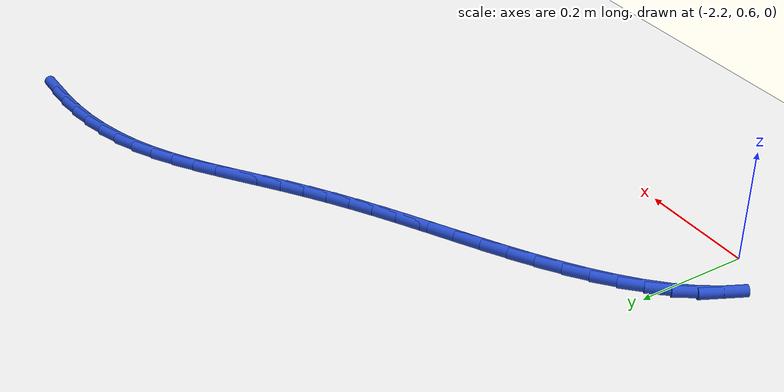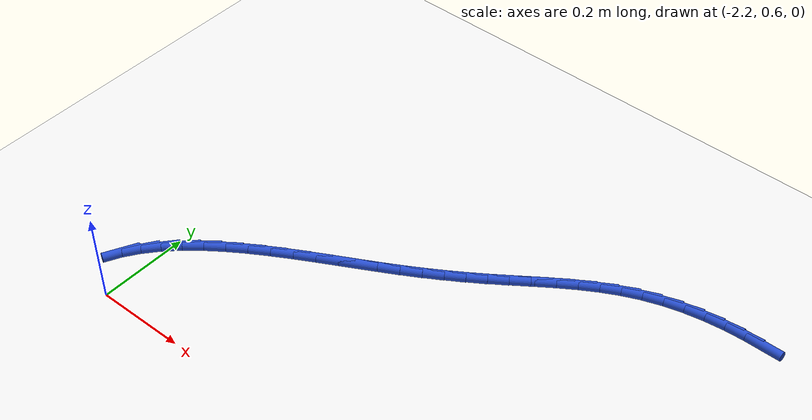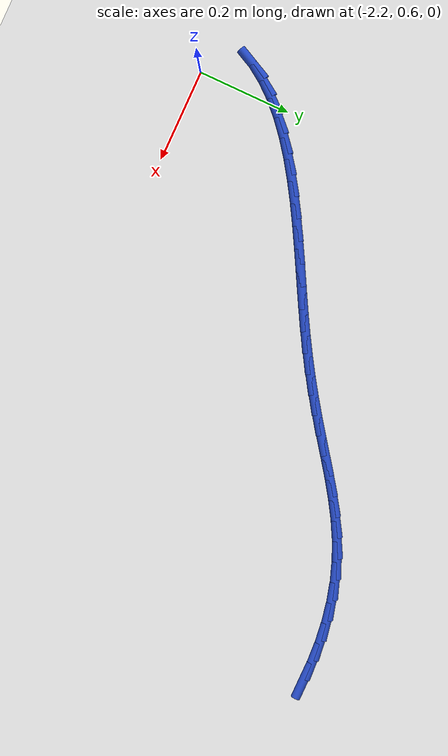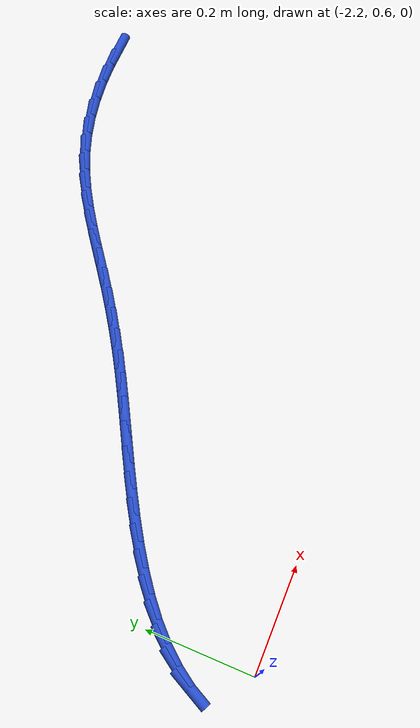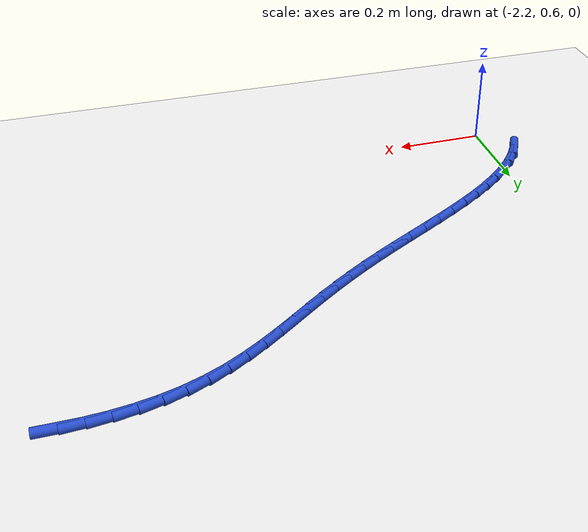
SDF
<sdf version="1.6">
 <world name="default">
  <model name="ground_plane">
   <static>1</static>
   <link name="link">
    <collision name="collision">
     <geometry><plane><normal>0 0 1</normal><size>100 100</size></plane></geometry>
     <surface><friction><ode><mu>100</mu><mu2>50</mu2></ode></friction></surface>
    </collision>
    <visual name="visual">
     <cast_shadows>0</cast_shadows>
     <geometry><plane><normal>0 0 1</normal><size>100 100</size></plane></geometry>
     <material>
      <script><uri>file://media/materials/scripts/gazebo.material</uri><name>Gazebo/WhiteGlow</name></script>
     </material>
    </visual>
   </link>
  </model>
  <model name="line">
   <link name="link_43">
    <pose>-1.1350064405579257 1.32403395420901 0.01 0 1.57 -0.003826057197478869</pose>
    <collision name="collision">
     <geometry><cylinder><radius>0.01</radius><length>0.08</length></cylinder></geometry>
    </collision>
    <visual name="visual">
     <material>
      <script><name>Gazebo/Blue</name><uri>file://media/materials/scripts/gazebo.material</uri></script>
     </material>
     <geometry><cylinder><radius>0.01</radius><length>0.08</length></cylinder></geometry>
    </visual>
   </link>
   <link name="link_44">
    <pose>-1.1793335190831997 1.324203552974415 0.01 0 1.57 0.05669230682256397</pose>
    <collision name="collision">
     <geometry><cylinder><radius>0.01</radius><length>0.08</length></cylinder></geometry>
    </collision>
    <visual name="visual">
     <material>
      <script><name>Gazebo/Blue</name><uri>file://media/materials/scripts/gazebo.material</uri></script>
     </material>
     <geometry><cylinder><radius>0.01</radius><length>0.08</length></cylinder></geometry>
    </visual>
   </link>
   <link name="link_45">
    <pose>-1.2233157640510541 1.32170742327314 0.01 0 1.57 0.12095782961880742</pose>
    <collision name="collision">
     <geometry><cylinder><radius>0.01</radius><length>0.08</length></cylinder></geometry>
    </collision>
    <visual name="visual">
     <material>
      <script><name>Gazebo/Blue</name><uri>file://media/materials/scripts/gazebo.material</uri></script>
     </material>
     <geometry><cylinder><radius>0.01</radius><length>0.08</length></cylinder></geometry>
    </visual>
   </link>
   <link name="link_46">
    <pose>-1.2667519926686353 1.3164276973171631 0.01 0 1.57 0.18935030209173057</pose>
    <collision name="collision">
     <geometry><cylinder><radius>0.01</radius><length>0.08</length></cylinder></geometry>
    </collision>
    <visual name="visual">
     <material>
      <script><name>Gazebo/Blue</name><uri>file://media/materials/scripts/gazebo.material</uri></script>
     </material>
     <geometry><cylinder><radius>0.01</radius><length>0.08</length></cylinder></geometry>
    </visual>
   </link>
   <link name="link_47">
    <pose>-1.309441022143088 1.308246507318462 0.01 0 1.57 0.2621603259520876</pose>
    <collision name="collision">
     <geometry><cylinder><radius>0.01</radius><length>0.08</length></cylinder></geometry>
    </collision>
    <visual name="visual">
     <material>
      <script><name>Gazebo/Blue</name><uri>file://media/materials/scripts/gazebo.material</uri></script>
     </material>
     <geometry><cylinder><radius>0.01</radius><length>0.08</length></cylinder></geometry>
    </visual>
   </link>
   <link name="link_48">
    <pose>-1.351181669681559 1.2970459854890126 0.01 0 1.57 0.3395435796622505</pose>
    <collision name="collision">
     <geometry><cylinder><radius>0.01</radius><length>0.08</length></cylinder></geometry>
    </collision>
    <visual name="visual">
     <material>
      <script><name>Gazebo/Blue</name><uri>file://media/materials/scripts/gazebo.material</uri></script>
     </material>
     <geometry><cylinder><radius>0.01</radius><length>0.08</length></cylinder></geometry>
    </visual>
   </link>
   <link name="link_49">
    <pose>-1.3917727524911951 1.2827082640407936 0.01 0 1.57 0.42093712263266997</pose>
    <collision name="collision">
     <geometry><cylinder><radius>0.01</radius><length>0.08</length></cylinder></geometry>
    </collision>
    <visual name="visual">
     <material>
      <script><name>Gazebo/Blue</name><uri>file://media/materials/scripts/gazebo.material</uri></script>
     </material>
     <geometry><cylinder><radius>0.01</radius><length>0.08</length></cylinder></geometry>
    </visual>
   </link>
   <link name="link_50">
    <pose>-1.431024405599243 1.2651354156227603 0.01 0 1.57 0.49559298672273483</pose>
    <collision name="collision">
     <geometry><cylinder><radius>0.01</radius><length>0.08</length></cylinder></geometry>
    </collision>
    <visual name="visual">
     <material>
      <script><name>Gazebo/Blue</name><uri>file://media/materials/scripts/gazebo.material</uri></script>
     </material>
     <geometry><cylinder><radius>0.01</radius><length>0.08</length></cylinder></geometry>
    </visual>
   </link>
   <link name="link_51">
    <pose>-1.4689697541416944 1.2446223906792553 0.01 0 1.57 0.5537315926731041</pose>
    <collision name="collision">
     <geometry><cylinder><radius>0.01</radius><length>0.08</length></cylinder></geometry>
    </collision>
    <visual name="visual">
     <material>
      <script><name>Gazebo/Blue</name><uri>file://media/materials/scripts/gazebo.material</uri></script>
     </material>
     <geometry><cylinder><radius>0.01</radius><length>0.08</length></cylinder></geometry>
    </visual>
   </link>
   <link name="link_52">
    <pose>-1.5058459617517588 1.2218236273261294 0.01 0 1.57 0.5953084457364575</pose>
    <collision name="collision">
     <geometry><cylinder><radius>0.01</radius><length>0.08</length></cylinder></geometry>
    </collision>
    <visual name="visual">
     <material>
      <script><name>Gazebo/Blue</name><uri>file://media/materials/scripts/gazebo.material</uri></script>
     </material>
     <geometry><cylinder><radius>0.01</radius><length>0.08</length></cylinder></geometry>
    </visual>
   </link>
   <link name="link_53">
    <pose>-1.5418977101846243 1.1974068095725383 0.01 0 1.57 0.6208105087612137</pose>
    <collision name="collision">
     <geometry><cylinder><radius>0.01</radius><length>0.08</length></cylinder></geometry>
    </collision>
    <visual name="visual">
     <material>
      <script><name>Gazebo/Blue</name><uri>file://media/materials/scripts/gazebo.material</uri></script>
     </material>
     <geometry><cylinder><radius>0.01</radius><length>0.08</length></cylinder></geometry>
    </visual>
   </link>
   <link name="link_54">
    <pose>-1.5773696811954772 1.1720396214276338 0.01 0 1.57 0.6305769314997918</pose>
    <collision name="collision">
     <geometry><cylinder><radius>0.01</radius><length>0.08</length></cylinder></geometry>
    </collision>
    <visual name="visual">
     <material>
      <script><name>Gazebo/Blue</name><uri>file://media/materials/scripts/gazebo.material</uri></script>
     </material>
     <geometry><cylinder><radius>0.01</radius><length>0.08</length></cylinder></geometry>
    </visual>
   </link>
   <link name="link_55">
    <pose>-1.612506556539506 1.1463897469005704 0.01 0 1.57 0.624615673662241</pose>
    <collision name="collision">
     <geometry><cylinder><radius>0.01</radius><length>0.08</length></cylinder></geometry>
    </collision>
    <visual name="visual">
     <material>
      <script><name>Gazebo/Blue</name><uri>file://media/materials/scripts/gazebo.material</uri></script>
     </material>
     <geometry><cylinder><radius>0.01</radius><length>0.08</length></cylinder></geometry>
    </visual>
   </link>
   <link name="link_56">
    <pose>-1.6475530349599123 1.1211247329157865 0.01 0 1.57 0.6058468612660123</pose>
    <collision name="collision">
     <geometry><cylinder><radius>0.01</radius><length>0.08</length></cylinder></geometry>
    </collision>
    <visual name="visual">
     <material>
      <script><name>Gazebo/Blue</name><uri>file://media/materials/scripts/gazebo.material</uri></script>
     </material>
     <geometry><cylinder><radius>0.01</radius><length>0.08</length></cylinder></geometry>
    </visual>
   </link>
   <link name="link_57">
    <pose>-1.6827772542499968 1.096722985087023 0.01 0 1.57 0.5840741859471246</pose>
    <collision name="collision">
     <geometry><cylinder><radius>0.01</radius><length>0.08</length></cylinder></geometry>
    </collision>
    <visual name="visual">
     <material>
      <script><name>Gazebo/Blue</name><uri>file://media/materials/scripts/gazebo.material</uri></script>
     </material>
     <geometry><cylinder><radius>0.01</radius><length>0.08</length></cylinder></geometry>
    </visual>
   </link>
   <link name="link_58">
    <pose>-1.7185172870066328 1.0730985704410467 0.01 0 1.57 0.5617065692769106</pose>
    <collision name="collision">
     <geometry><cylinder><radius>0.01</radius><length>0.08</length></cylinder></geometry>
    </collision>
    <visual name="visual">
     <material>
      <script><name>Gazebo/Blue</name><uri>file://media/materials/scripts/gazebo.material</uri></script>
     </material>
     <geometry><cylinder><radius>0.01</radius><length>0.08</length></cylinder></geometry>
    </visual>
   </link>
   <link name="link_59">
    <pose>-1.755124191592309 1.0500607674266496 0.01 0 1.57 0.539388807184973</pose>
    <collision name="collision">
     <geometry><cylinder><radius>0.01</radius><length>0.08</length></cylinder></geometry>
    </collision>
    <visual name="visual">
     <material>
      <script><name>Gazebo/Blue</name><uri>file://media/materials/scripts/gazebo.material</uri></script>
     </material>
     <geometry><cylinder><radius>0.01</radius><length>0.08</length></cylinder></geometry>
    </visual>
   </link>
   <link name="link_60">
    <pose>-1.7929490263695147 1.0274188544926226 0.01 0 1.57 0.5186388453061893</pose>
    <collision name="collision">
     <geometry><cylinder><radius>0.01</radius><length>0.08</length></cylinder></geometry>
    </collision>
    <visual name="visual">
     <material>
      <script><name>Gazebo/Blue</name><uri>file://media/materials/scripts/gazebo.material</uri></script>
     </material>
     <geometry><cylinder><radius>0.01</radius><length>0.08</length></cylinder></geometry>
    </visual>
   </link>
   <link name="link_61">
    <pose>-1.8322538622166253 1.0049853891619354 0.01 0 1.57 0.5050150374955464</pose>
    <collision name="collision">
     <geometry><cylinder><radius>0.01</radius><length>0.08</length></cylinder></geometry>
    </collision>
    <visual name="visual">
     <material>
      <script><name>Gazebo/Blue</name><uri>file://media/materials/scripts/gazebo.material</uri></script>
     </material>
     <geometry><cylinder><radius>0.01</radius><length>0.08</length></cylinder></geometry>
    </visual>
   </link>
   <link name="link_62">
    <pose>-1.872758908106407 0.9825928958708826 0.01 0 1.57 0.49985176683955396</pose>
    <collision name="collision">
     <geometry><cylinder><radius>0.01</radius><length>0.08</length></cylinder></geometry>
    </collision>
    <visual name="visual">
     <material>
      <script><name>Gazebo/Blue</name><uri>file://media/materials/scripts/gazebo.material</uri></script>
     </material>
     <geometry><cylinder><radius>0.01</radius><length>0.08</length></cylinder></geometry>
    </visual>
   </link>
   <link name="link_63">
    <pose>-1.9139804204021162 0.9600814144467359 0.01 0 1.57 0.5026726263491614</pose>
    <collision name="collision">
     <geometry><cylinder><radius>0.01</radius><length>0.08</length></cylinder></geometry>
    </collision>
    <visual name="visual">
     <material>
      <script><name>Gazebo/Blue</name><uri>file://media/materials/scripts/gazebo.material</uri></script>
     </material>
     <geometry><cylinder><radius>0.01</radius><length>0.08</length></cylinder></geometry>
    </visual>
   </link>
   <link name="link_64">
    <pose>-1.955434285334234 0.9372909983556854 0.01 0 1.57 0.5133681828867818</pose>
    <collision name="collision">
     <geometry><cylinder><radius>0.01</radius><length>0.08</length></cylinder></geometry>
    </collision>
    <visual name="visual">
     <material>
      <script><name>Gazebo/Blue</name><uri>file://media/materials/scripts/gazebo.material</uri></script>
     </material>
     <geometry><cylinder><radius>0.01</radius><length>0.08</length></cylinder></geometry>
    </visual>
   </link>
   <link name="link_65">
    <pose>-1.9966363891332402 0.9140617010639187 0.01 0 1.57 0.5321730342734662</pose>
    <collision name="collision">
     <geometry><cylinder><radius>0.01</radius><length>0.08</length></cylinder></geometry>
    </collision>
    <visual name="visual">
     <material>
      <script><name>Gazebo/Blue</name><uri>file://media/materials/scripts/gazebo.material</uri></script>
     </material>
     <geometry><cylinder><radius>0.01</radius><length>0.08</length></cylinder></geometry>
    </visual>
   </link>
   <link name="link_66">
    <pose>-2.037102618029618 0.8902335760376248 0.01 0 1.57 0.5596613166465336</pose>
    <collision name="collision">
     <geometry><cylinder><radius>0.01</radius><length>0.08</length></cylinder></geometry>
    </collision>
    <visual name="visual">
     <material>
      <script><name>Gazebo/Blue</name><uri>file://media/materials/scripts/gazebo.material</uri></script>
     </material>
     <geometry><cylinder><radius>0.01</radius><length>0.08</length></cylinder></geometry>
    </visual>
   </link>
   <link name="link_67">
    <pose>-2.0763488582538474 0.8656466767429926 0.01 0 1.57 0.596756995318464</pose>
    <collision name="collision">
     <geometry><cylinder><radius>0.01</radius><length>0.08</length></cylinder></geometry>
    </collision>
    <visual name="visual">
     <material>
      <script><name>Gazebo/Blue</name><uri>file://media/materials/scripts/gazebo.material</uri></script>
     </material>
     <geometry><cylinder><radius>0.01</radius><length>0.08</length></cylinder></geometry>
    </visual>
   </link>
   <link name="link_68">
    <pose>-2.1138909960364094 0.8401410566462101 0.01 0 1.57 0.6447462445790583</pose>
    <collision name="collision">
     <geometry><cylinder><radius>0.01</radius><length>0.08</length></cylinder></geometry>
    </collision>
    <visual name="visual">
     <material>
      <script><name>Gazebo/Blue</name><uri>file://media/materials/scripts/gazebo.material</uri></script>
     </material>
     <geometry><cylinder><radius>0.01</radius><length>0.08</length></cylinder></geometry>
    </visual>
   </link>
   <link name="link_69">
    <pose>-2.149244917607786 0.8135567692134663 0.01 0 1.57 0.7052671447336795</pose>
    <collision name="collision">
     <geometry><cylinder><radius>0.01</radius><length>0.08</length></cylinder></geometry>
    </collision>
    <visual name="visual">
     <material>
      <script><name>Gazebo/Blue</name><uri>file://media/materials/scripts/gazebo.material</uri></script>
     </material>
     <geometry><cylinder><radius>0.01</radius><length>0.08</length></cylinder></geometry>
    </visual>
   </link>
   <link name="link_70">
    <pose>-2.181926509198458 0.7857338679109501 0.01 0 1.57 0.7802287854264223</pose>
    <collision name="collision">
     <geometry><cylinder><radius>0.01</radius><length>0.08</length></cylinder></geometry>
    </collision>
    <visual name="visual">
     <material>
      <script><name>Gazebo/Blue</name><uri>file://media/materials/scripts/gazebo.material</uri></script>
     </material>
     <geometry><cylinder><radius>0.01</radius><length>0.08</length></cylinder></geometry>
    </visual>
   </link>
   <link name="link_71">
    <pose>-2.2114516570389067 0.7565124062048496 0.01 0 1.57 0.8715764304216828</pose>
    <collision name="collision">
     <geometry><cylinder><radius>0.01</radius><length>0.08</length></cylinder></geometry>
    </collision>
    <visual name="visual">
     <material>
      <script><name>Gazebo/Blue</name><uri>file://media/materials/scripts/gazebo.material</uri></script>
     </material>
     <geometry><cylinder><radius>0.01</radius><length>0.08</length></cylinder></geometry>
    </visual>
   </link>
   <link name="link_72">
    <pose>-2.237336247359613 0.7257324375613539 0.01 0 1.57 0.9807874666371675</pose>
    <collision name="collision">
     <geometry><cylinder><radius>0.01</radius><length>0.08</length></cylinder></geometry>
    </collision>
    <visual name="visual">
     <material>
      <script><name>Gazebo/Blue</name><uri>file://media/materials/scripts/gazebo.material</uri></script>
     </material>
     <geometry><cylinder><radius>0.01</radius><length>0.08</length></cylinder></geometry>
    </visual>
   </link>
   <link name="link_73">
    <pose>-2.259096166391058 0.6932340154466514 0.01 0 1.57 1.108016587512448</pose>
    <collision name="collision">
     <geometry><cylinder><radius>0.01</radius><length>0.08</length></cylinder></geometry>
    </collision>
    <visual name="visual">
     <material>
      <script><name>Gazebo/Blue</name><uri>file://media/materials/scripts/gazebo.material</uri></script>
     </material>
     <geometry><cylinder><radius>0.01</radius><length>0.08</length></cylinder></geometry>
    </visual>
   </link>
  </model>
 </world>
</sdf>
